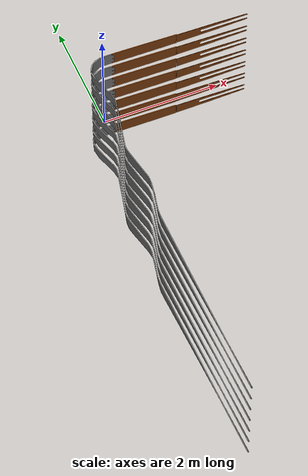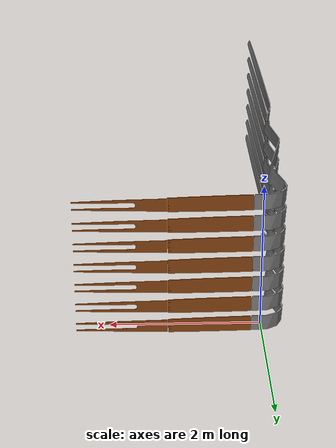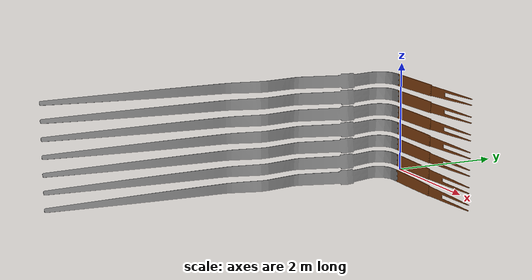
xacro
<?xml version="1.0"?>
<robot xmlns:xacro="http://www.ros.org/wiki/xacro" name="alkimia_door">

	<xacro:property name="pi" value="3.1415926535897931" />
	<xacro:property name="coupleFins" value="true" />

	<!-- Profile model -->

	<xacro:macro name="profile" params="parent name position orientation">

		<joint name="${name}_joint" type="fixed">
			<origin xyz="${position}" rpy="${orientation}" />
			<parent link="${parent}"/>
			<child link="${name}"/>
			<axis xyz="1 0 0" />
			<limit lower="${0*pi/180}" upper="${90*pi/180}" effort="60" velocity="10"/>
			<dynamics damping="1.0" friction="10.0"/>
		</joint>

		<link name="${name}">
			<inertial>
				<origin xyz="0 0 -0.1" rpy="0 0 0"/>
				<mass value="50.0"/>
				<inertia
				ixx="1.0" ixy="0.0" ixz="0.0"
				iyy="1.0" iyz="0.0"
				izz="1.0"/>
			</inertial>
			<visual>
				<origin xyz="0 0 0" rpy="0.0 0 0"/>
				<geometry>
					<mesh filename="package://alkimia_door/urdf/meshes/roof.stl" scale=" .001 .001 .001" />
					<!-- box size="0.2 0.2 5.1"/ -->
				</geometry>
				<material name="Gray">
					<color rgba="0.5 0.5 0.5 1.0"/>
				</material>
			</visual>
			<collision>
				<origin xyz="-0.1 -4 -0.1" rpy="0.0 0 0"/>
				<geometry>
					<box size="0.2 8 0.2"/>
				</geometry>
			</collision>
		</link>
	</xacro:macro>

	<!-- FIN model -->
	<xacro:macro name="fin" params="parent name position orientation">

		<!-- TOP FIN -->
		<joint name="${name}_top_joint" type="revolute">
			<origin xyz="${position}" rpy="${orientation}" />
			<parent link="${parent}"/>
			<child link="${name}_top_fin"/>
			<axis xyz="1 0 0" />
			<limit lower="${0*pi/180}" upper="${90*pi/180}" effort="60" velocity="10"/>
			<dynamics damping="1.0" friction="10.0"/>
		</joint>

		<link name="${name}_top_fin">
			<inertial>
				<origin xyz="-0.1 -0.55 0.01" rpy="0 0 0"/>
				<mass value="2.0"/>
				<inertia
				ixx="2.6" ixy="0.0" ixz="0.0"
				iyy="0.06" iyz="0.0"
				izz="2.6"/>
			</inertial>
			<visual>
				<origin xyz="0 0 0" rpy="0 0 0" />
				<geometry>
					<mesh filename="package://alkimia_door/urdf/meshes/top_fin.stl" scale=" .001 .001 .001" />
					<!-- box size="1.0 0.01 0.3"/ -->
				</geometry>
				<material name="Brown">
					<color rgba="0.545 0.27 0.07 1.0"/>
				</material>
			</visual>
			<collision>
				<origin xyz="-0.1 -0.55 0.01" rpy="0 0 0" />
				<geometry>
					<!-- mesh filename="package://alkimia_door/urdf/meshes/top_fin.stl" scale=" .001 .001 .001" / -->
					<box size="0.2 1.1 0.02"/>
				</geometry>
			</collision>
		</link>

		<!-- BOTTOM FIN -->
		<joint name="${name}_bottom_joint" type="revolute">
			<origin xyz="0.0 -1.11 0.0" rpy="-1.57 0 -1.57" />
			<parent link="${name}_top_fin"/>
			<child link="${name}_bottom_fin"/>
			<axis xyz="0 0 -1" />
			<limit lower="${0*pi/180}" upper="${180*pi/180}" effort="60" velocity="10"/>
			<dynamics damping="0.5" friction="5.0"/>
		</joint>

		<link name="${name}_bottom_fin">
			<inertial>
				<origin xyz="0.35 -0.01 -0.1" rpy="0 0 0"/>
				<mass value="1.5"/>
				<inertia
				ixx="0.03" ixy="0.0" ixz="0.0"
				iyy="1.3" iyz="0.0"
				izz="1.3"/>
			</inertial>
			<visual>
				<origin xyz="0.07 0.12 -0.017" rpy="0 0 0" />
				<geometry>
					<mesh filename="package://alkimia_door/urdf/meshes/bottom_fin.stl" scale=" .001 .001 .001" />
					<!-- box size="1.0 0.01 0.3"/ -->
				</geometry>
				<material name="Brown">
					<color rgba="0.545 0.27 0.07 1.0"/>
				</material>
			</visual>
			<collision>
				<origin xyz="0.65 -0.01 -0.1" rpy="0 0 0" />
				<geometry>
					<!-- mesh filename="package://alkimia_door/urdf/meshes/bottom_fin.stl" scale=" .001 .001 .001" / -->
					<box size="1.3 0.02 0.2"/>
				</geometry>
			</collision>
		</link>

		<transmission name="${name}_top_fin_trans">
			<type>transmission_interface/SimpleTransmission</type>
			<joint name="${name}_top_joint">
				<hardwareInterface>EffortJointInterface</hardwareInterface>
			</joint>
			<actuator name="${name}_top_fin_motor">
				<mechanicalReduction>1</mechanicalReduction>
			</actuator>
		</transmission>

		<transmission name="${name}_bottom_fin_trans">
			<type>transmission_interface/SimpleTransmission</type>
			<joint name="${name}_bottom_joint">
				<hardwareInterface>PositionJointInterface</hardwareInterface>
			</joint>
			<actuator name="${name}_top_fin_motor">
				<mechanicalReduction>-2</mechanicalReduction>
			</actuator>
		</transmission>

	</xacro:macro>

	<link name="world"/>

    <xacro:profile parent="world" name="Iprofile1" position="0.0 0.0 0.0" orientation="0.0 0.0 0.0" />
	<xacro:fin parent="Iprofile1" name="fin1" position="0.11 -0.13 -0.2" orientation="0 1.57 1.57" />

    <xacro:profile parent="world" name="Iprofile2" position="0.0 0.0 0.3" orientation="0.0 0.0 0.0" />
	<xacro:fin parent="Iprofile2" name="fin2" position="0.11 -0.13 -0.2" orientation="0 1.57 1.57" />

    <xacro:profile parent="world" name="Iprofile3" position="0.0 0.0 0.6" orientation="0.0 0.0 0.0" />
	<xacro:fin parent="Iprofile3" name="fin3" position="0.11 -0.13 -0.2" orientation="0 1.57 1.57" />

    <xacro:profile parent="world" name="Iprofile4" position="0.0 0.0 0.9" orientation="0.0 0.0 0.0" />
	<xacro:fin parent="Iprofile4" name="fin4" position="0.11 -0.13 -0.2" orientation="0 1.57 1.57" />

    <xacro:profile parent="world" name="Iprofile5" position="0.0 0.0 1.2" orientation="0.0 0.0 0.0" />
	<xacro:fin parent="Iprofile5" name="fin5" position="0.11 -0.13 -0.2" orientation="0 1.57 1.57" />

    <xacro:profile parent="world" name="Iprofile6" position="0.0 0.0 1.5" orientation="0.0 0.0 0.0" />
	<xacro:fin parent="Iprofile6" name="fin6" position="0.11 -0.13 -0.2" orientation="0 1.57 1.57" />

    <xacro:profile parent="world" name="Iprofile7" position="0.0 0.0 1.8" orientation="0.0 0.0 0.0" />
	<xacro:fin parent="Iprofile7" name="fin7" position="0.11 -0.13 -0.2" orientation="0 1.57 1.57" />

	<gazebo>
		<plugin name="alkimia_plugins" filename="libalkimia_plugins.so">
			<robotNamespace>alkimia_door</robotNamespace>
			<master1>fin1</master1>
			<couplingStiffness>150</couplingStiffness>
		</plugin>
	</gazebo>

</robot>
